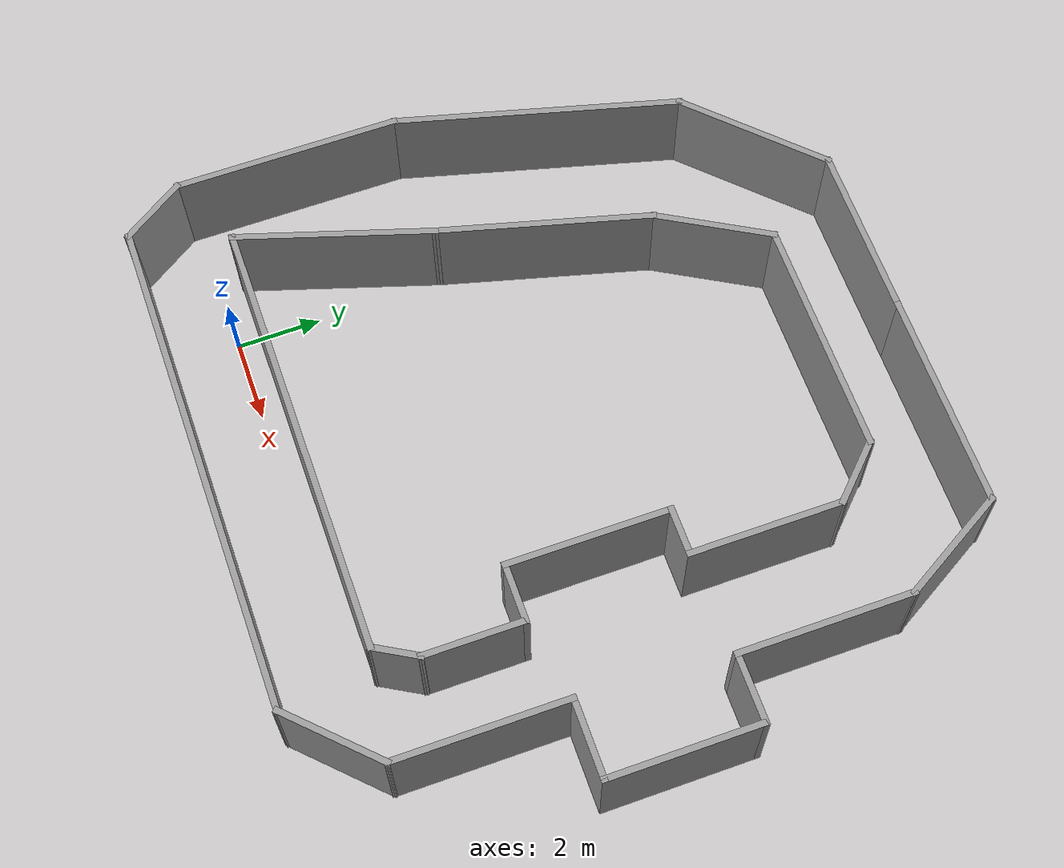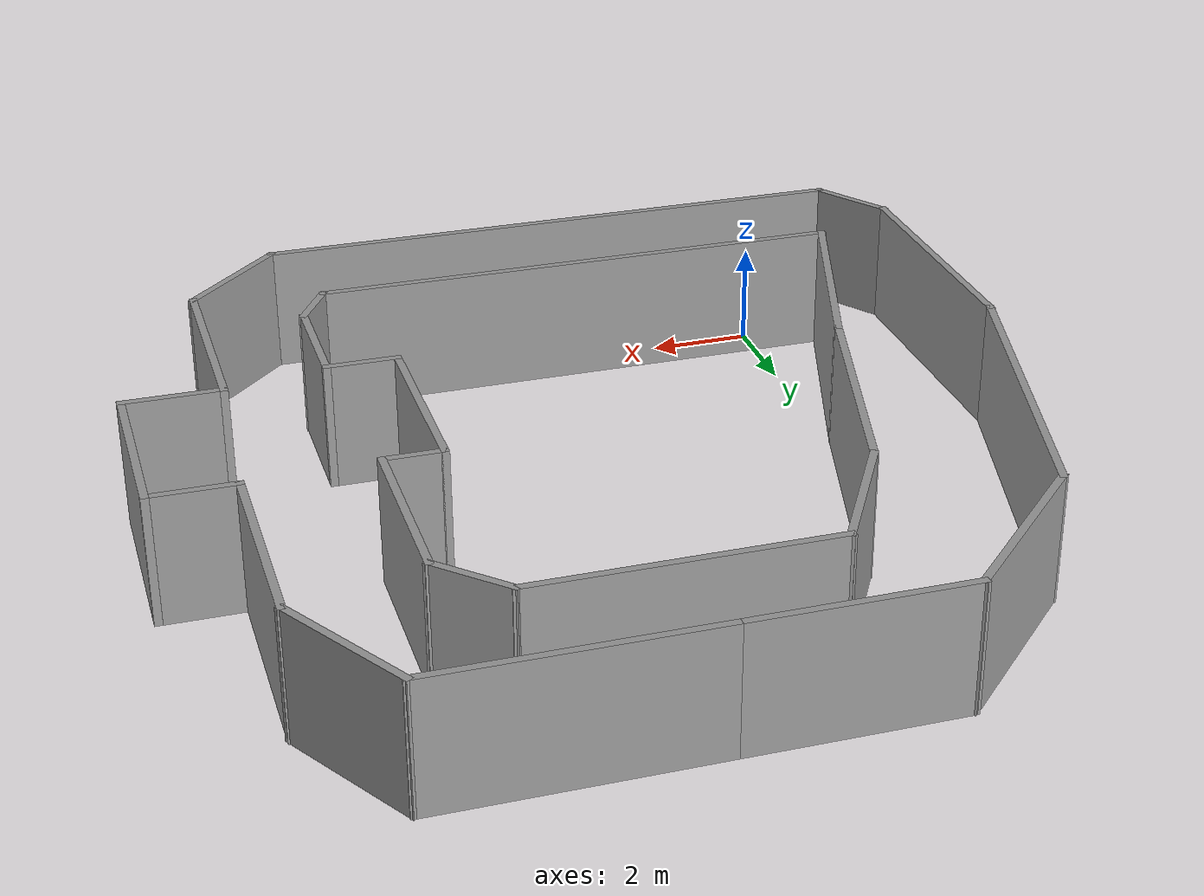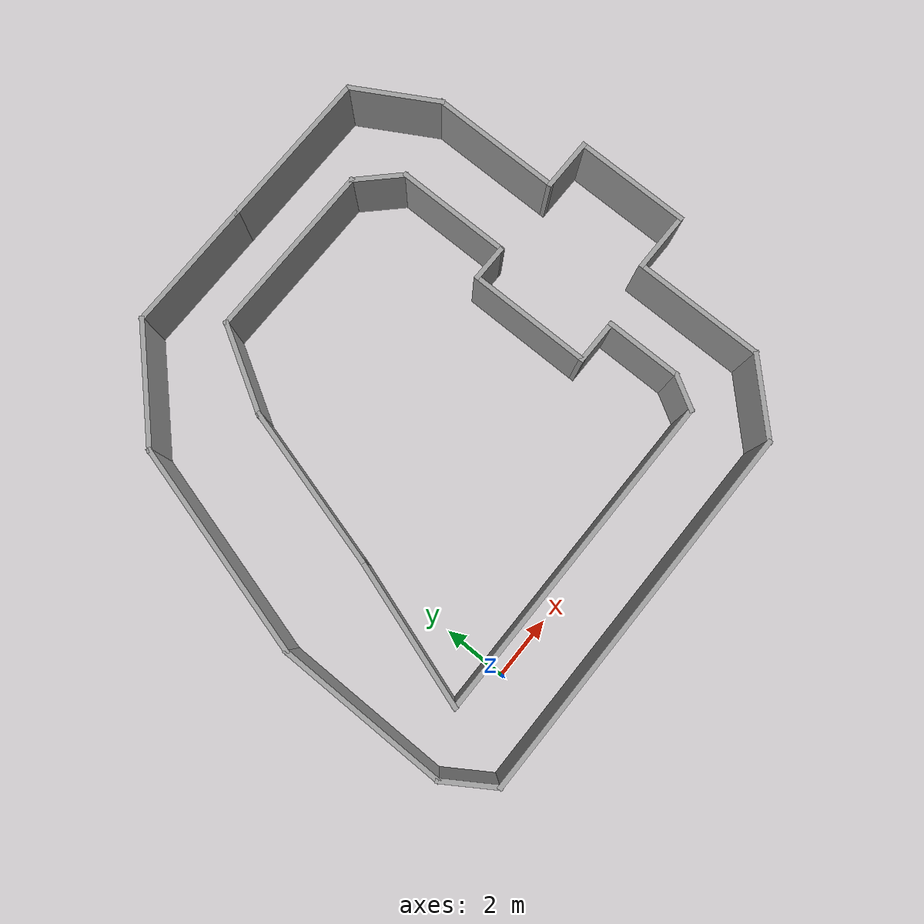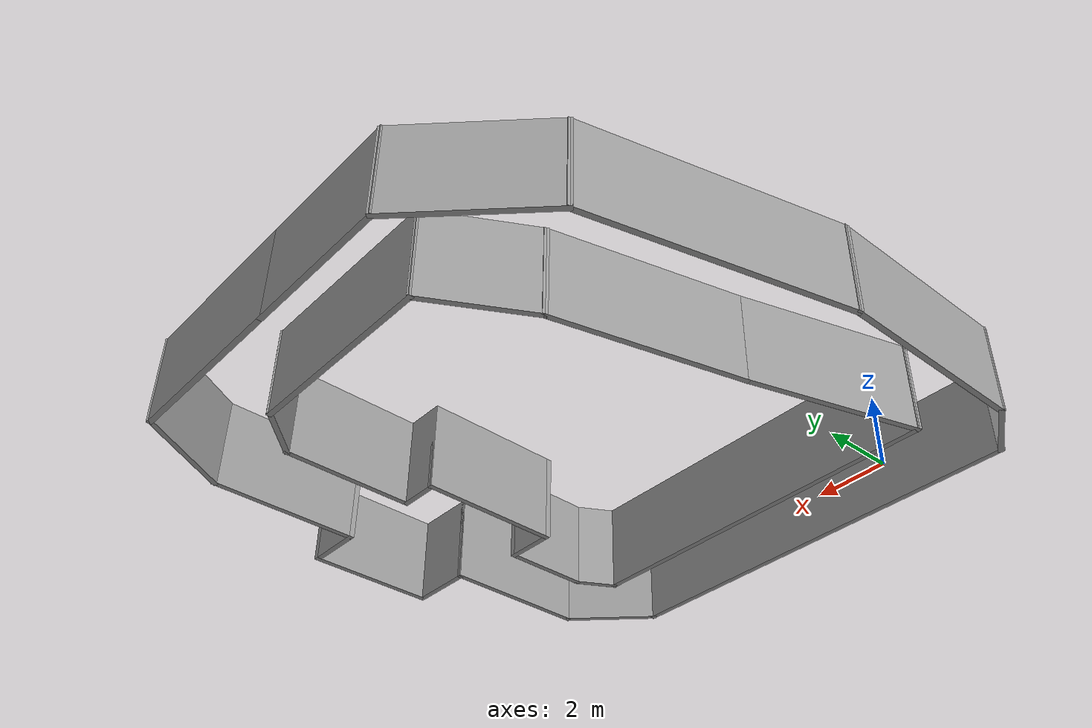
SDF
<?xml version='1.0'?>
<sdf version='1.6'>
  <model name='raceTrack'>
    <pose frame=''>5.11329 6.38836 0 0 -0 0</pose>
    <link name='Wall_0'>
      <collision name='Wall_0_Collision'>
        <geometry>
          <box>
            <size>12.25 0.15 2.5</size>
          </box>
        </geometry>
        <pose frame=''>0 0 1.25 0 -0 0</pose>
      </collision>
      <visual name='Wall_0_Visual'>
        <pose frame=''>0 0 1.25 0 -0 0</pose>
        <geometry>
          <box>
            <size>12.25 0.15 2.5</size>
          </box>
        </geometry>
        <material>
          <script>
            <uri>file://media/materials/scripts/gazebo.material</uri>
            <name>Gazebo/Grey</name>
          </script>
          <ambient>1 1 1 1</ambient>
        </material>
        <meta>
          <layer>0</layer>
        </meta>
      </visual>
      <pose frame=''>-1.36391 -8.05332 0 0 -0 0</pose>
    </link>
    <link name='Wall_1'>
      <collision name='Wall_1_Collision'>
        <geometry>
          <box>
            <size>2.75 0.15 2.5</size>
          </box>
        </geometry>
        <pose frame=''>0 0 1.25 0 -0 0</pose>
      </collision>
      <visual name='Wall_1_Visual'>
        <pose frame=''>0 0 1.25 0 -0 0</pose>
        <geometry>
          <box>
            <size>2.75 0.15 2.5</size>
          </box>
        </geometry>
        <material>
          <script>
            <uri>file://media/materials/scripts/gazebo.material</uri>
            <name>Gazebo/Grey</name>
          </script>
          <ambient>1 1 1 1</ambient>
        </material>
        <meta>
          <layer>0</layer>
        </meta>
      </visual>
      <pose frame=''>5.60533 -7.13409 0 0 -0 0.785398</pose>
    </link>
    <link name='Wall_10'>
      <collision name='Wall_10_Collision'>
        <geometry>
          <box>
            <size>4 0.15 2.5</size>
          </box>
        </geometry>
        <pose frame=''>0 0 1.25 0 -0 0</pose>
      </collision>
      <visual name='Wall_10_Visual'>
        <pose frame=''>0 0 1.25 0 -0 0</pose>
        <geometry>
          <box>
            <size>4 0.15 2.5</size>
          </box>
        </geometry>
        <material>
          <script>
            <uri>file://media/materials/scripts/gazebo.material</uri>
            <name>Gazebo/Grey</name>
          </script>
          <ambient>1 1 1 1</ambient>
        </material>
        <meta>
          <layer>0</layer>
        </meta>
      </visual>
      <pose frame=''>-5.21161 6.69214 0 0 0 -2.35619</pose>
    </link>
    <link name='Wall_11'>
      <collision name='Wall_11_Collision'>
        <geometry>
          <box>
            <size>7 0.15 2.5</size>
          </box>
        </geometry>
        <pose frame=''>0 0 1.25 0 -0 0</pose>
      </collision>
      <visual name='Wall_11_Visual'>
        <pose frame=''>0 0 1.25 0 -0 0</pose>
        <geometry>
          <box>
            <size>7 0.15 2.5</size>
          </box>
        </geometry>
        <material>
          <script>
            <uri>file://media/materials/scripts/gazebo.material</uri>
            <name>Gazebo/Grey</name>
          </script>
          <ambient>1 1 1 1</ambient>
        </material>
        <meta>
          <layer>0</layer>
        </meta>
      </visual>
      <pose frame=''>-7.45925 2.02267 0 0 0 -1.8326</pose>
    </link>
    <link name='Wall_12'>
      <collision name='Wall_12_Collision'>
        <geometry>
          <box>
            <size>5.5 0.15 2.5</size>
          </box>
        </geometry>
        <pose frame=''>0 0 1.25 0 -0 0</pose>
      </collision>
      <visual name='Wall_12_Visual'>
        <pose frame=''>0 0 1.25 0 -0 0</pose>
        <geometry>
          <box>
            <size>5.5 0.15 2.5</size>
          </box>
        </geometry>
        <material>
          <script>
            <uri>file://media/materials/scripts/gazebo.material</uri>
            <name>Gazebo/Grey</name>
          </script>
          <ambient>1 1 1 1</ambient>
        </material>
        <meta>
          <layer>0</layer>
        </meta>
      </visual>
      <pose frame=''>-8.3457 -3.96063 0 0 0 -1.5708</pose>
    </link>
    <link name='Wall_13'>
      <collision name='Wall_13_Collision'>
        <geometry>
          <box>
            <size>1.8465 0.15 2.5</size>
          </box>
        </geometry>
        <pose frame=''>0 0 1.25 0 -0 0</pose>
      </collision>
      <visual name='Wall_13_Visual'>
        <pose frame=''>0 0 1.25 0 -0 0</pose>
        <geometry>
          <box>
            <size>1.8465 0.15 2.5</size>
          </box>
        </geometry>
        <material>
          <script>
            <uri>file://media/materials/scripts/gazebo.material</uri>
            <name>Gazebo/Grey</name>
          </script>
          <ambient>1 1 1 1</ambient>
        </material>
        <meta>
          <layer>0</layer>
        </meta>
      </visual>
      <pose frame=''>-7.87981 -7.34448 0 0 0 -0.989335</pose>
    </link>
    <link name='Wall_16'>
      <collision name='Wall_16_Collision'>
        <geometry>
          <box>
            <size>10.75 0.15 2.5</size>
          </box>
        </geometry>
        <pose frame=''>0 0 1.25 0 -0 0</pose>
      </collision>
      <visual name='Wall_16_Visual'>
        <pose frame=''>0 0 1.25 0 -0 0</pose>
        <geometry>
          <box>
            <size>10.75 0.15 2.5</size>
          </box>
        </geometry>
        <material>
          <script>
            <uri>file://media/materials/scripts/gazebo.material</uri>
            <name>Gazebo/Grey</name>
          </script>
          <ambient>1 1 1 1</ambient>
        </material>
        <meta>
          <layer>0</layer>
        </meta>
      </visual>
      <pose frame=''>-1.27902 -5.7936 0 0 -0 0</pose>
    </link>
    <link name='Wall_17'>
      <collision name='Wall_17_Collision'>
        <geometry>
          <box>
            <size>1.25 0.15 2.5</size>
          </box>
        </geometry>
        <pose frame=''>0 0 1.25 0 -0 0</pose>
      </collision>
      <visual name='Wall_17_Visual'>
        <pose frame=''>0 0 1.25 0 -0 0</pose>
        <geometry>
          <box>
            <size>1.25 0.15 2.5</size>
          </box>
        </geometry>
        <material>
          <script>
            <uri>file://media/materials/scripts/gazebo.material</uri>
            <name>Gazebo/Grey</name>
          </script>
          <ambient>1 1 1 1</ambient>
        </material>
        <meta>
          <layer>0</layer>
        </meta>
      </visual>
      <pose frame=''>4.29598 -5.31728 0 0 -0 1.0472</pose>
    </link>
    <link name='Wall_18'>
      <collision name='Wall_18_Collision'>
        <geometry>
          <box>
            <size>2.5 0.15 2.5</size>
          </box>
        </geometry>
        <pose frame=''>0 0 1.25 0 -0 0</pose>
      </collision>
      <visual name='Wall_18_Visual'>
        <pose frame=''>0 0 1.25 0 -0 0</pose>
        <geometry>
          <box>
            <size>2.5 0.15 2.5</size>
          </box>
        </geometry>
        <material>
          <script>
            <uri>file://media/materials/scripts/gazebo.material</uri>
            <name>Gazebo/Grey</name>
          </script>
          <ambient>1 1 1 1</ambient>
        </material>
        <meta>
          <layer>0</layer>
        </meta>
      </visual>
      <pose frame=''>4.57098 -3.66597 0 0 -0 1.5708</pose>
    </link>
    <link name='Wall_19'>
      <collision name='Wall_19_Collision'>
        <geometry>
          <box>
            <size>1.5 0.15 2.5</size>
          </box>
        </geometry>
        <pose frame=''>0 0 1.25 0 -0 0</pose>
      </collision>
      <visual name='Wall_19_Visual'>
        <pose frame=''>0 0 1.25 0 -0 0</pose>
        <geometry>
          <box>
            <size>1.5 0.15 2.5</size>
          </box>
        </geometry>
        <material>
          <script>
            <uri>file://media/materials/scripts/gazebo.material</uri>
            <name>Gazebo/Grey</name>
          </script>
          <ambient>1 1 1 1</ambient>
        </material>
        <meta>
          <layer>0</layer>
        </meta>
      </visual>
      <pose frame=''>3.89598 -2.49097 0 0 -0 3.14159</pose>
    </link>
    <link name='Wall_2'>
      <collision name='Wall_2_Collision'>
        <geometry>
          <box>
            <size>4.25 0.15 2.5</size>
          </box>
        </geometry>
        <pose frame=''>0 0 1.25 0 -0 0</pose>
      </collision>
      <visual name='Wall_2_Visual'>
        <pose frame=''>0 0 1.25 0 -0 0</pose>
        <geometry>
          <box>
            <size>4.25 0.15 2.5</size>
          </box>
        </geometry>
        <material>
          <script>
            <uri>file://media/materials/scripts/gazebo.material</uri>
            <name>Gazebo/Grey</name>
          </script>
          <ambient>1 1 1 1</ambient>
        </material>
        <meta>
          <layer>0</layer>
        </meta>
      </visual>
      <pose frame=''>6.52457 -4.16485 0 0 -0 1.5708</pose>
    </link>
    <link name='Wall_20'>
      <collision name='Wall_20_Collision'>
        <geometry>
          <box>
            <size>4 0.15 2.5</size>
          </box>
        </geometry>
        <pose frame=''>0 0 1.25 0 -0 0</pose>
      </collision>
      <visual name='Wall_20_Visual'>
        <pose frame=''>0 0 1.25 0 -0 0</pose>
        <geometry>
          <box>
            <size>4 0.15 2.5</size>
          </box>
        </geometry>
        <material>
          <script>
            <uri>file://media/materials/scripts/gazebo.material</uri>
            <name>Gazebo/Grey</name>
          </script>
          <ambient>1 1 1 1</ambient>
        </material>
        <meta>
          <layer>0</layer>
        </meta>
      </visual>
      <pose frame=''>3.22098 -0.56597 0 0 -0 1.5708</pose>
    </link>
    <link name='Wall_21'>
      <collision name='Wall_21_Collision'>
        <geometry>
          <box>
            <size>1.25 0.15 2.5</size>
          </box>
        </geometry>
        <pose frame=''>0 0 1.25 0 -0 0</pose>
      </collision>
      <visual name='Wall_21_Visual'>
        <pose frame=''>0 0 1.25 0 -0 0</pose>
        <geometry>
          <box>
            <size>1.25 0.15 2.5</size>
          </box>
        </geometry>
        <material>
          <script>
            <uri>file://media/materials/scripts/gazebo.material</uri>
            <name>Gazebo/Grey</name>
          </script>
          <ambient>1 1 1 1</ambient>
        </material>
        <meta>
          <layer>0</layer>
        </meta>
      </visual>
      <pose frame=''>3.77098 1.35903 0 0 -0 0</pose>
    </link>
    <link name='Wall_22'>
      <collision name='Wall_22_Collision'>
        <geometry>
          <box>
            <size>3.75 0.15 2.5</size>
          </box>
        </geometry>
        <pose frame=''>0 0 1.25 0 -0 0</pose>
      </collision>
      <visual name='Wall_22_Visual'>
        <pose frame=''>0 0 1.25 0 -0 0</pose>
        <geometry>
          <box>
            <size>3.75 0.15 2.5</size>
          </box>
        </geometry>
        <material>
          <script>
            <uri>file://media/materials/scripts/gazebo.material</uri>
            <name>Gazebo/Grey</name>
          </script>
          <ambient>1 1 1 1</ambient>
        </material>
        <meta>
          <layer>0</layer>
        </meta>
      </visual>
      <pose frame=''>4.32098 3.15903 0 0 -0 1.5708</pose>
    </link>
    <link name='Wall_23'>
      <collision name='Wall_23_Collision'>
        <geometry>
          <box>
            <size>1.75 0.15 2.5</size>
          </box>
        </geometry>
        <pose frame=''>0 0 1.25 0 -0 0</pose>
      </collision>
      <visual name='Wall_23_Visual'>
        <pose frame=''>0 0 1.25 0 -0 0</pose>
        <geometry>
          <box>
            <size>1.75 0.15 2.5</size>
          </box>
        </geometry>
        <material>
          <script>
            <uri>file://media/materials/scripts/gazebo.material</uri>
            <name>Gazebo/Grey</name>
          </script>
          <ambient>1 1 1 1</ambient>
        </material>
        <meta>
          <layer>0</layer>
        </meta>
      </visual>
      <pose frame=''>3.75529 5.52471 0 0 -0 2.35619</pose>
    </link>
    <link name='Wall_24'>
      <collision name='Wall_24_Collision'>
        <geometry>
          <box>
            <size>5.75 0.15 2.5</size>
          </box>
        </geometry>
        <pose frame=''>0 0 1.25 0 -0 0</pose>
      </collision>
      <visual name='Wall_24_Visual'>
        <pose frame=''>0 0 1.25 0 -0 0</pose>
        <geometry>
          <box>
            <size>5.75 0.15 2.5</size>
          </box>
        </geometry>
        <material>
          <script>
            <uri>file://media/materials/scripts/gazebo.material</uri>
            <name>Gazebo/Grey</name>
          </script>
          <ambient>1 1 1 1</ambient>
        </material>
        <meta>
          <layer>0</layer>
        </meta>
      </visual>
      <pose frame=''>0.389606 6.0904 0 0 -0 3.14159</pose>
    </link>
    <link name='Wall_25'>
      <collision name='Wall_25_Collision'>
        <geometry>
          <box>
            <size>3 0.15 2.5</size>
          </box>
        </geometry>
        <pose frame=''>0 0 1.25 0 -0 0</pose>
      </collision>
      <visual name='Wall_25_Visual'>
        <pose frame=''>0 0 1.25 0 -0 0</pose>
        <geometry>
          <box>
            <size>3 0.15 2.5</size>
          </box>
        </geometry>
        <material>
          <script>
            <uri>file://media/materials/scripts/gazebo.material</uri>
            <name>Gazebo/Grey</name>
          </script>
          <ambient>1 1 1 1</ambient>
        </material>
        <meta>
          <layer>0</layer>
        </meta>
      </visual>
      <pose frame=''>-3.12289 4.85632 0 0 0 -2.0944</pose>
    </link>
    <link name='Wall_26'>
      <collision name='Wall_26_Collision'>
        <geometry>
          <box>
            <size>5.25 0.15 2.5</size>
          </box>
        </geometry>
        <pose frame=''>0 0 1.25 0 -0 0</pose>
      </collision>
      <visual name='Wall_26_Visual'>
        <pose frame=''>0 0 1.25 0 -0 0</pose>
        <geometry>
          <box>
            <size>5.25 0.15 2.5</size>
          </box>
        </geometry>
        <material>
          <script>
            <uri>file://media/materials/scripts/gazebo.material</uri>
            <name>Gazebo/Grey</name>
          </script>
          <ambient>1 1 1 1</ambient>
        </material>
        <meta>
          <layer>0</layer>
        </meta>
      </visual>
      <pose frame=''>-4.49538 1.15912 0 0 0 -1.8326</pose>
    </link>
    <link name='Wall_27'>
      <collision name='Wall_27_Collision'>
        <geometry>
          <box>
            <size>4.85992 0.15 2.5</size>
          </box>
        </geometry>
        <pose frame=''>0 0 1.25 0 -0 0</pose>
      </collision>
      <visual name='Wall_27_Visual'>
        <pose frame=''>0 0 1.25 0 -0 0</pose>
        <geometry>
          <box>
            <size>4.85992 0.15 2.5</size>
          </box>
        </geometry>
        <material>
          <script>
            <uri>file://media/materials/scripts/gazebo.material</uri>
            <name>Gazebo/Grey</name>
          </script>
          <ambient>1 1 1 1</ambient>
        </material>
        <meta>
          <layer>0</layer>
        </meta>
      </visual>
      <pose frame=''>-5.8672 -3.5488 0 0 0 -1.87787</pose>
    </link>
    <link name='Wall_3'>
      <collision name='Wall_3_Collision'>
        <geometry>
          <box>
            <size>2 0.15 2.5</size>
          </box>
        </geometry>
        <pose frame=''>0 0 1.25 0 -0 0</pose>
      </collision>
      <visual name='Wall_3_Visual'>
        <pose frame=''>0 0 1.25 0 -0 0</pose>
        <geometry>
          <box>
            <size>2 0.15 2.5</size>
          </box>
        </geometry>
        <material>
          <script>
            <uri>file://media/materials/scripts/gazebo.material</uri>
            <name>Gazebo/Grey</name>
          </script>
          <ambient>1 1 1 1</ambient>
        </material>
        <meta>
          <layer>0</layer>
        </meta>
      </visual>
      <pose frame=''>7.44957 -2.11485 0 0 -0 0</pose>
    </link>
    <link name='Wall_4'>
      <collision name='Wall_4_Collision'>
        <geometry>
          <box>
            <size>3.75 0.15 2.5</size>
          </box>
        </geometry>
        <pose frame=''>0 0 1.25 0 -0 0</pose>
      </collision>
      <visual name='Wall_4_Visual'>
        <pose frame=''>0 0 1.25 0 -0 0</pose>
        <geometry>
          <box>
            <size>3.75 0.15 2.5</size>
          </box>
        </geometry>
        <material>
          <script>
            <uri>file://media/materials/scripts/gazebo.material</uri>
            <name>Gazebo/Grey</name>
          </script>
          <ambient>1 1 1 1</ambient>
        </material>
        <meta>
          <layer>0</layer>
        </meta>
      </visual>
      <pose frame=''>8.37457 -0.314848 0 0 -0 1.5708</pose>
    </link>
    <link name='Wall_5'>
      <collision name='Wall_5_Collision'>
        <geometry>
          <box>
            <size>1.75 0.15 2.5</size>
          </box>
        </geometry>
        <pose frame=''>0 0 1.25 0 -0 0</pose>
      </collision>
      <visual name='Wall_5_Visual'>
        <pose frame=''>0 0 1.25 0 -0 0</pose>
        <geometry>
          <box>
            <size>1.75 0.15 2.5</size>
          </box>
        </geometry>
        <material>
          <script>
            <uri>file://media/materials/scripts/gazebo.material</uri>
            <name>Gazebo/Grey</name>
          </script>
          <ambient>1 1 1 1</ambient>
        </material>
        <meta>
          <layer>0</layer>
        </meta>
      </visual>
      <pose frame=''>7.57457 1.48515 0 0 -0 3.14159</pose>
    </link>
    <link name='Wall_6'>
      <collision name='Wall_6_Collision'>
        <geometry>
          <box>
            <size>4.25 0.15 2.5</size>
          </box>
        </geometry>
        <pose frame=''>0 0 1.25 0 -0 0</pose>
      </collision>
      <visual name='Wall_6_Visual'>
        <pose frame=''>0 0 1.25 0 -0 0</pose>
        <geometry>
          <box>
            <size>4.25 0.15 2.5</size>
          </box>
        </geometry>
        <material>
          <script>
            <uri>file://media/materials/scripts/gazebo.material</uri>
            <name>Gazebo/Grey</name>
          </script>
          <ambient>1 1 1 1</ambient>
        </material>
        <meta>
          <layer>0</layer>
        </meta>
      </visual>
      <pose frame=''>6.77457 3.53515 0 0 -0 1.5708</pose>
    </link>
    <link name='Wall_7'>
      <collision name='Wall_7_Collision'>
        <geometry>
          <box>
            <size>3 0.15 2.5</size>
          </box>
        </geometry>
        <pose frame=''>0 0 1.25 0 -0 0</pose>
      </collision>
      <visual name='Wall_7_Visual'>
        <pose frame=''>0 0 1.25 0 -0 0</pose>
        <geometry>
          <box>
            <size>3 0.15 2.5</size>
          </box>
        </geometry>
        <material>
          <script>
            <uri>file://media/materials/scripts/gazebo.material</uri>
            <name>Gazebo/Grey</name>
          </script>
          <ambient>1 1 1 1</ambient>
        </material>
        <meta>
          <layer>0</layer>
        </meta>
      </visual>
      <pose frame=''>6.06207 6.81924 0 0 -0 2.0944</pose>
    </link>
    <link name='Wall_8'>
      <collision name='Wall_8_Collision'>
        <geometry>
          <box>
            <size>5.25 0.15 2.5</size>
          </box>
        </geometry>
        <pose frame=''>0 0 1.25 0 -0 0</pose>
      </collision>
      <visual name='Wall_8_Visual'>
        <pose frame=''>0 0 1.25 0 -0 0</pose>
        <geometry>
          <box>
            <size>5.25 0.15 2.5</size>
          </box>
        </geometry>
        <material>
          <script>
            <uri>file://media/materials/scripts/gazebo.material</uri>
            <name>Gazebo/Grey</name>
          </script>
          <ambient>1 1 1 1</ambient>
        </material>
        <meta>
          <layer>0</layer>
        </meta>
      </visual>
      <pose frame=''>2.79957 8.05332 0 0 -0 3.14159</pose>
    </link>
    <link name='Wall_9'>
      <collision name='Wall_9_Collision'>
        <geometry>
          <box>
            <size>4.25 0.15 2.5</size>
          </box>
        </geometry>
        <pose frame=''>0 0 1.25 0 -0 0</pose>
      </collision>
      <visual name='Wall_9_Visual'>
        <pose frame=''>0 0 1.25 0 -0 0</pose>
        <geometry>
          <box>
            <size>4.25 0.15 2.5</size>
          </box>
        </geometry>
        <material>
          <script>
            <uri>file://media/materials/scripts/gazebo.material</uri>
            <name>Gazebo/Grey</name>
          </script>
          <ambient>1 1 1 1</ambient>
        </material>
        <meta>
          <layer>0</layer>
        </meta>
      </visual>
      <pose frame=''>-1.80043 8.05332 0 0 -0 3.14159</pose>
    </link>
    <static>1</static>
  </model>
</sdf>
